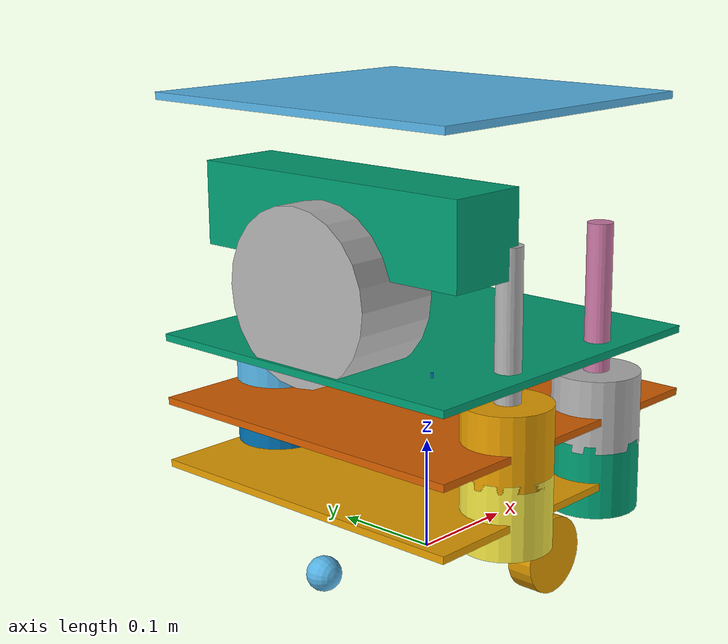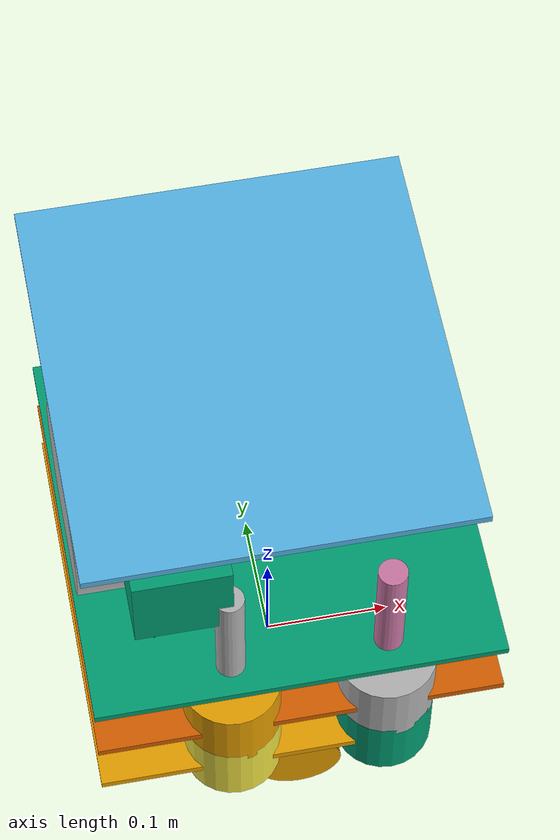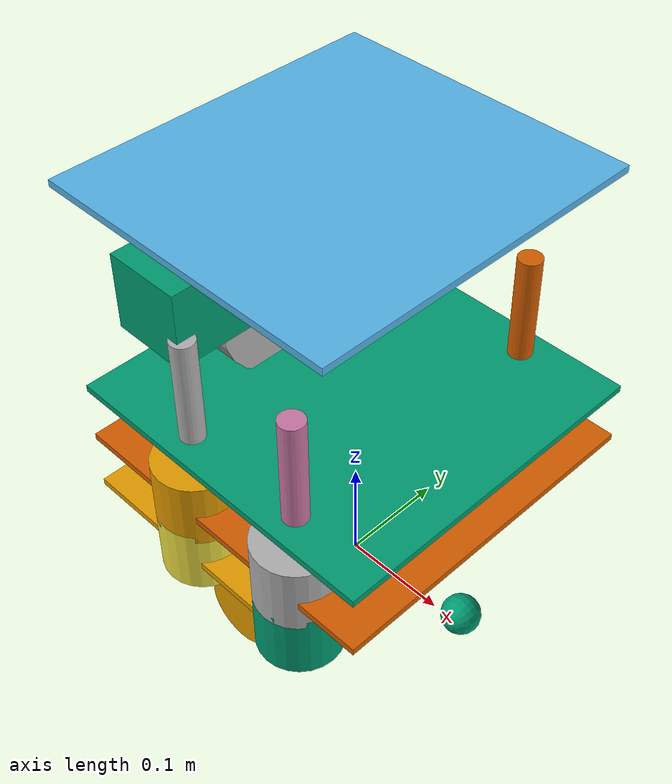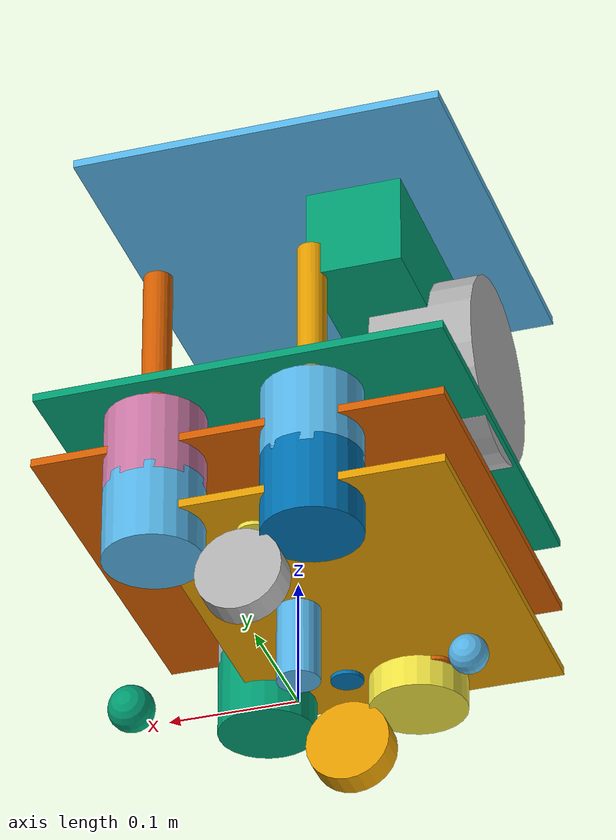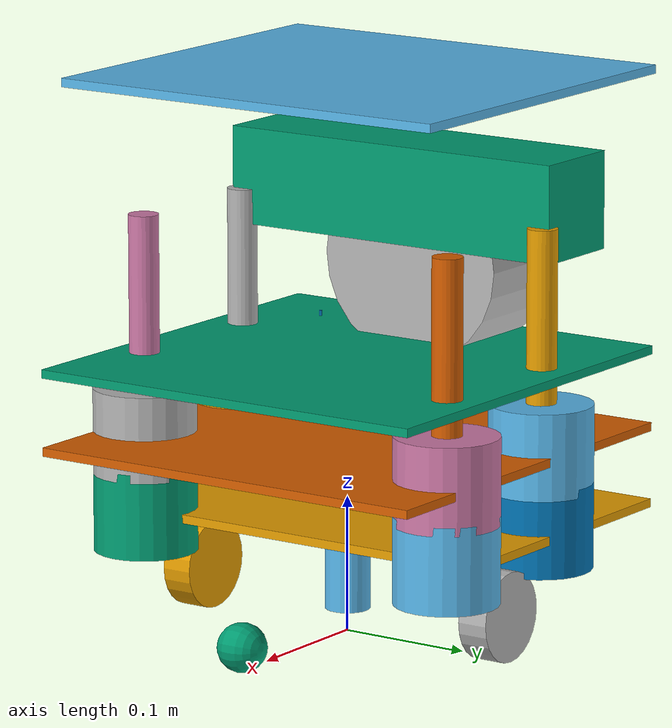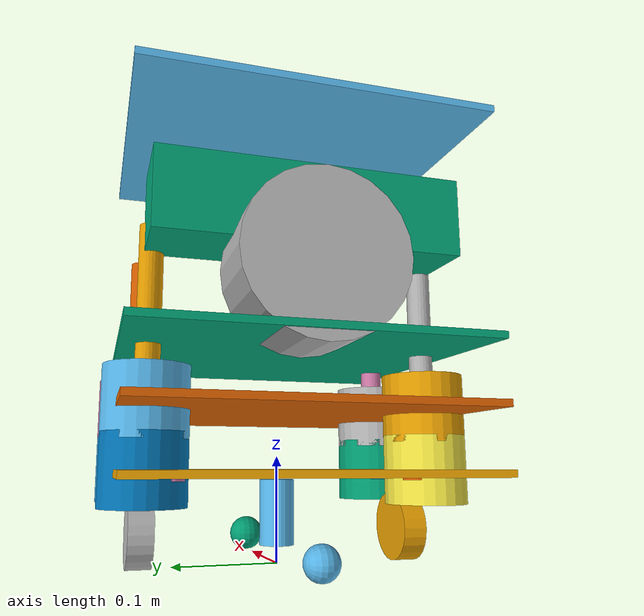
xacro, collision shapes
<?xml version="1.0"?>

<robot name="hector_turtlebot"
       xmlns:sensor="http://playerstage.sourceforge.net/gazebo/xmlschema/#sensor"
       xmlns:controller="http://playerstage.sourceforge.net/gazebo/xmlschema/#controller"
       xmlns:interface="http://playerstage.sourceforge.net/gazebo/xmlschema/#interface"
       xmlns:xacro="http://ros.org/wiki/xacro">
  <include filename="$(find turtlebot_description)/urdf/turtlebot_hardware.urdf.xacro" />
  <include filename="$(find hector_turtlebot_description)/urdf/hector_turtlebot_body.urdf.xacro" />
  <include filename="$(find turtlebot_description)/urdf/turtlebot_calibration.xacro" />
  <include filename="$(find hector_turtlebot_description)/urdf/hector_turtlebot_kinect.urdf.xacro" />

  <property name="M_PI" value="3.14159"/>
  <property name="SCALE" value="0.0254"/>

  <!-- Body of TurtleBot, with plates, standoffs and Create (including sim sensors) -->
  <hector_turtlebot_body/>

  <!-- Kinect frames and mounting (includes simulation) -->
  <hector_turtlebot_kinect/>

  <include filename="$(find hector_sensors_description)/urdf/hokuyo_utm30lx.urdf.xacro" />
  <xacro:hokuyo_utm30lx name="hokuyo_laser" parent="plate_2_link" ros_topic="hokuyo_scan" update_rate="40" ray_count="1040" min_angle="130" max_angle="-130">
    <origin xyz="-0.115 0.0 0.06" rpy="0 0 0"/>
  </xacro:hokuyo_utm30lx>
</robot>

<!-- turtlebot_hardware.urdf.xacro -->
<robot name="turtlebot_hardware" xmlns:xacro="http://ros.org/wiki/xacro">
  <property name="M_PI" value="3.14159"/>
  <property name="M_SCALE" value="0.001"/>

  <xacro:macro name="turtlebot_spacer" params="parent number x_loc y_loc z_loc">
    <joint name="spacer_${number}_joint" type="fixed">
      <origin xyz="${x_loc} ${y_loc} ${z_loc}" rpy="0 0 0" />
      <parent link="${parent}"/>
      <child link="spacer_${number}_link" />
    </joint>

    <link name="spacer_${number}_link">
      <inertial>
        <mass value="0.001" />
        <origin xyz="0 0 0" />
        <inertia ixx="0.0001" ixy="0.0" ixz="0.0"
          iyy="0.0001" iyz="0.0"
          izz="0.0001" />
      </inertial>

      <visual>
        <origin xyz=" 0 0 0 " rpy="0 0 0" />
        <geometry>
          <mesh filename="package://turtlebot_description/meshes/68-02403-125_Spacer.dae" scale="${M_SCALE} ${M_SCALE} ${M_SCALE}"/>
        </geometry>
      </visual>

      <collision>
        <origin xyz="0.0 0.0 0.0" rpy="0 0 0" />
        <geometry>
          <cylinder length="0.003175" radius=".0127"/>
        </geometry>
      </collision>
    </link>
  </xacro:macro>

  <xacro:macro name="turtlebot_standoff_1in" params="parent number x_loc y_loc z_loc">
    <joint name="standoff_1in_${number}_joint" type="fixed">
      <origin xyz="${x_loc} ${y_loc} ${z_loc}" rpy="0 0 0" />
      <parent link="${parent}"/>
      <child link="standoff_1in_${number}_link" />
    </joint>

    <link name="standoff_1in_${number}_link">
      <inertial>
        <mass value="0.001" />
        <origin xyz="0 0 0" />
        <inertia ixx="0.0001" ixy="0.0" ixz="0.0"
          iyy="0.0001" iyz="0.0"
          izz="0.0001" />
      </inertial>

      <visual>
        <origin xyz=" 0 0 0 " rpy="0 0 0" />
        <geometry>
          <mesh filename="package://turtlebot_description/meshes/68-04552-1000-RA_Turtlebot_M-F_Standoff.dae" scale="${M_SCALE} ${M_SCALE} ${M_SCALE}"/>
        </geometry>
      </visual>

      <collision>
        <origin xyz="0.0 0.0 0.0" rpy="0 0 0" />
        <geometry>
          <cylinder length="0.0381" radius="0.011113"/>
        </geometry>
      </collision>
    </link>
  </xacro:macro>

  <xacro:macro name="turtlebot_standoff_2in" params="parent number x_loc y_loc z_loc">
    <joint name="standoff_2in_${number}_joint" type="fixed">
      <origin xyz="${x_loc} ${y_loc} ${z_loc}" rpy="0 0 0" />
      <parent link="${parent}"/>
      <child link="standoff_2in_${number}_link" />
    </joint>

    <link name="standoff_2in_${number}_link">
      <inertial>
        <mass value="0.001" />
        <origin xyz="0 0 0" />
        <inertia ixx="0.0001" ixy="0.0" ixz="0.0"
          iyy="0.0001" iyz="0.0"
          izz="0.0001" />
      </inertial>

      <visual>
        <origin xyz=" 0 0 0 " rpy="0 0 0" />
        <geometry>
          <mesh filename="package://turtlebot_description/meshes/68-04552-2000-RA_Turtlebot_M-F_Standoff.dae" scale="${M_SCALE} ${M_SCALE} ${M_SCALE}"/>
        </geometry>
      </visual>

      <collision>
        <origin xyz="0.0 0.0 0.0" rpy="0 0 0" />
        <geometry>
          <cylinder length="0.0635" radius="0.0381"/>
        </geometry>
      </collision>
    </link>
  </xacro:macro>

  <xacro:macro name="turtlebot_standoff_8in" params="parent number x_loc y_loc z_loc">
    <joint name="standoff_8in_${number}_joint" type="fixed">
      <origin xyz="${x_loc} ${y_loc} ${z_loc}" rpy="0 0 0" />
      <parent link="${parent}"/>
      <child link="standoff_8in_${number}_link" />
    </joint>

    <link name="standoff_8in_${number}_link">
      <inertial>
        <mass value="0.001" />
        <origin xyz="0 0 0" />
        <inertia ixx="0.0001" ixy="0.0" ixz="0.0"
          iyy="0.0001" iyz="0.0"
          izz="0.0001" />
      </inertial>

      <visual>
        <origin xyz=" 0 0 0 " rpy="0 0 0" />
        <geometry>
          <mesh filename="package://turtlebot_description/meshes/68-02421-8000-RA_Turtlebot_F-F_Standoff.dae" scale="${M_SCALE} ${M_SCALE} ${M_SCALE}"/>
        </geometry>
      </visual>

      <collision>
        <origin xyz="0.0 0.0 0.0" rpy="0 0 0" />
        <geometry>
          <cylinder length="0.2032" radius="0.011113"/>
        </geometry>
      </collision>
    </link>
  </xacro:macro>

  <xacro:macro name="turtlebot_standoff_kinect" params="parent number x_loc y_loc z_loc">
    <joint name="standoff_kinect_${number}_joint" type="fixed">
      <origin xyz="${x_loc} ${y_loc} ${z_loc}" rpy="0 0 0" />
      <parent link="${parent}"/>
      <child link="standoff_kinect_${number}_link" />
    </joint>

    <link name="standoff_kinect_${number}_link">
      <inertial>
        <mass value="0.001" />
        <origin xyz="0 0 0" />
        <inertia ixx="0.0001" ixy="0.0" ixz="0.0"
          iyy="0.0001" iyz="0.0"
          izz="0.0001" />
      </inertial>

      <visual>
        <origin xyz=" 0 0 0 " rpy="0 0 0" />
        <geometry>
          <mesh filename="package://turtlebot_description/meshes/68-04556-RA_Kinect_Standoff_Assy.3ds" scale="${M_SCALE} ${M_SCALE} ${M_SCALE}"/>
        </geometry>
      </visual>

      <collision>
        <origin xyz="0.0 0.0 0.0" rpy="0 0 0" />
        <geometry>
          <cylinder length="0.008585" radius="0.001111"/>
        </geometry>
      </collision>
    </link>
  </xacro:macro>

</robot>

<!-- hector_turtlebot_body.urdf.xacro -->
<robot name="hector_turtlebot_hardware" xmlns:xacro="http://ros.org/wiki/xacro">
  <property name="M_PI" value="3.14159"/>

  <!-- Macro for TurtleBot body. Including Gazebo extensions, but does not include Kinect -->
  <include filename="$(find turtlebot_description)/urdf/gazebo.urdf.xacro"/>

  <property name="base_x" value="0.33" />
  <property name="base_y" value="0.33" />

  <xacro:macro name="hector_turtlebot_body">
    <material name="Green">
      <color rgba="0.0 0.8 0.0 1.0"/>
    </material>

  <!-- base_footprint is a fictitious link(frame) that is on the ground right below base_link origin, navigation stack depends on this frame -->

  <link name="base_footprint">
    <inertial>
      <mass value="0.0001" />
      <origin xyz="0 0 0" />
      <inertia ixx="0.0001" ixy="0.0" ixz="0.0"
              iyy="0.0001" iyz="0.0"
              izz="0.0001" />
    </inertial>

    <visual>
      <origin xyz="0 0 0" rpy="0 0 0" />
      <geometry>
        <box size="0.001 0.001 0.001" />
      </geometry>
      <material name="Green" />
    </visual>

    <collision>
      <origin xyz="0 0 0.017" rpy="0 0 0" />
      <geometry>
       <box size="0.001 0.001 0.001" />
      </geometry>
    </collision>
  </link>

  <link name="base_link">
    <inertial>
      <mass value="2" />
      <origin xyz="0 0 0.0" />
      <inertia ixx="0.01" ixy="0.0" ixz="0.0"
        iyy="0.01" iyz="0.0" izz="0.5" />
    </inertial>

    <visual>
      <origin xyz=" 0 0 0.0308" rpy="0 0 0" />
      <geometry>
        <mesh filename="package://turtlebot_description/meshes/create_body.dae"/>
      </geometry>
    </visual>

    <collision>
      <origin xyz="0.0 0.0 0.0308" rpy="0 0 0" />
      <geometry>
        <cylinder length="0.0611632" radius="0.016495"/>
      </geometry>
    </collision>
  </link>

  <link name="wall_sensor_link">
    <inertial>
      <mass value="0.01" />
      <origin xyz="0 0 0"/>
      <inertia ixx="0.001" ixy="0.0" ixz="0.0"
        iyy="0.001" iyz="0.0" izz="0.001" />
    </inertial>
  </link>

  <link name="left_cliff_sensor_link">
    <inertial>
      <mass value="0.01" />
      <origin xyz="0 0 0"/>
      <inertia ixx="0.001" ixy="0.0" ixz="0.0"
        iyy="0.001" iyz="0.0" izz="0.001" />
    </inertial>
  </link>

  <link name="right_cliff_sensor_link">
    <inertial>
      <mass value="0.01" />
      <origin xyz="0 0 0"/>
      <inertia ixx="0.001" ixy="0.0" ixz="0.0"
        iyy="0.001" iyz="0.0" izz="0.001" />
    </inertial>
  </link>

  <link name="leftfront_cliff_sensor_link">
    <inertial>
      <mass value="0.01" />
      <origin xyz="0 0 0"/>
      <inertia ixx="1.0" ixy="0.0" ixz="0.0"
        iyy="0.01" iyz="0.0" izz="0.01" />
    </inertial>
  </link>

  <link name="rightfront_cliff_sensor_link">
    <inertial>
      <mass value="0.01" />
      <origin xyz="0 0 0"/>
      <inertia ixx="0.001" ixy="0.0" ixz="0.0"
        iyy="0.001" iyz="0.0" izz="0.001" />
    </inertial>
  </link>

  <joint name="base_footprint_joint" type="fixed">
    <origin xyz="0 0 0.017" rpy="0 0 0" />
    <parent link="base_footprint"/>
    <child link="base_link" />
  </joint>

  <joint name="base_wall_sensor_joint" type="fixed">
    <origin xyz="0.09 -0.120 0.042" rpy="0 0 -1.0" />
    <parent link="base_link"/>
    <child link="wall_sensor_link" />
  </joint>

  <joint name="base_left_cliff_sensor_joint" type="fixed">
    <origin xyz="0.07 0.14 0.01" rpy="0 1.57079 0" />
    <parent link="base_link"/>
    <child link="left_cliff_sensor_link" />
  </joint>

  <joint name="base_right_cliff_sensor_joint" type="fixed">
    <origin xyz="0.07 -0.14 0.01" rpy="0 1.57079 0" />
    <parent link="base_link"/>
    <child link="right_cliff_sensor_link" />
  </joint>

  <joint name="base_leftfront_cliff_sensor_joint" type="fixed">
    <origin xyz="0.15 0.04 0.01" rpy="0 1.57079 0" />
    <parent link="base_link"/>
    <child link="leftfront_cliff_sensor_link" />
  </joint>

  <joint name="base_rightfront_cliff_sensor_joint" type="fixed">
    <origin xyz="0.15 -0.04 0.01" rpy="0 1.57079 0" />
    <parent link="base_link"/>
    <child link="rightfront_cliff_sensor_link" />
  </joint>

  <link name="left_wheel_link">
    <inertial>
      <origin xyz="0 0 0"/>
      <mass value="0.01" />
      <inertia ixx="0.001" ixy="0.0" ixz="0.0"
        iyy="0.001" iyz="0.0" izz="0.001" />
    </inertial>

    <visual>
      <origin xyz="0 0 0" rpy="0 1.5707 1.5707" />
      <geometry>
        <cylinder radius="0.033" length = "0.023"/>
      </geometry>
    </visual>

    <collision>
      <origin xyz="0 0 0" rpy="0 1.5707 1.5707" />
      <geometry>
        <cylinder radius="0.033" length = "0.023"/>
      </geometry>
    </collision>
  </link>

  <joint name="left_wheel_joint" type="continuous">
    <origin xyz="0 0.13 0.015" rpy="0 0 0"/>
    <parent link="base_link"/>
    <child link="left_wheel_link"/>
    <axis xyz="0 1 0"/>
  </joint>

  <link name="right_wheel_link">
    <inertial>
      <origin xyz="0 0 0"/>
      <mass value="0.01" />
      <inertia ixx="0.001" ixy="0.0" ixz="0.0"
        iyy="0.001" iyz="0.0" izz="0.001" />
    </inertial>

    <visual>
      <origin xyz="0 0 0" rpy="0 1.5707 1.5707" />
      <geometry>
        <cylinder radius="0.033" length = "0.023"/>
      </geometry>
    </visual>

    <collision>
      <origin xyz="0 0 0" rpy="0 1.5707 1.5707" />
      <geometry>
        <cylinder radius="0.033" length = "0.023"/>
      </geometry>
    </collision>
  </link>

  <joint name="right_wheel_joint" type="continuous">
    <origin xyz="0 -0.13 0.015" rpy="0 0 0"/>
    <parent link="base_link"/>
    <child link="right_wheel_link"/>
    <axis xyz="0 1 0"/>
  </joint>

  <link name="rear_wheel_link">
    <inertial>
      <origin xyz="0 0 0"/>
      <mass value="0.001" />
      <inertia ixx="0.0001" ixy="0.0" ixz="0.0"
        iyy="0.0001" iyz="0.0" izz="0.0001" />
    </inertial>

    <visual>
      <origin xyz="0 0 0" rpy="0 1.5707 1.5707"/>
      <geometry>
        <sphere radius="0.015" />
      </geometry>
    </visual>

    <collision>
      <origin xyz="0 0 0" rpy="0 1.5707 1.5707" />
      <geometry>
        <sphere radius="0.015" />
      </geometry>
    </collision>
  </link>
  <!-- fixed because there's no transmission -->
  <joint name="rear_castor_joint" type="fixed">
    <origin xyz="-0.13 0 0.0" rpy="0 0 0"/>
    <parent link="base_link"/>
    <child link="rear_wheel_link"/>
    <axis xyz="0 1 0"/>
  </joint>

  <link name="front_wheel_link">
    <inertial>
      <origin xyz="0 0 0" />
      <mass value="0.01" />
      <inertia ixx="0.001" ixy="0.0" ixz="0.0"
        iyy="0.001" iyz="0.0" izz="0.001" />
    </inertial>

    <visual>
      <origin xyz="0 0 0" rpy="0 1.5707 1.5707"/>
      <geometry>
        <sphere radius="0.018" />
      </geometry>
    </visual>

    <collision>
      <origin xyz="0 0 0" rpy="0 1.5707 1.5707" />
      <geometry>
        <sphere radius="0.018" />
      </geometry>
    </collision>
  </link>

  <!-- fixed because there's no transmission -->
  <joint name="front_castor_joint" type="fixed">
    <origin xyz="0.13 0 0.0" rpy="0 0 0"/>
    <parent link="base_link"/>
    <child link="front_wheel_link"/>
    <axis xyz="0 1 0"/>
  </joint>

  <turtlebot_spacer parent="base_link" number="0" x_loc="-0.00254" y_loc="0.1114679" z_loc="0.062992"/>
  <turtlebot_spacer parent="base_link" number="1" x_loc="-0.00254" y_loc="-0.1114679" z_loc="0.062992"/>
  <turtlebot_spacer parent="base_link" number="2" x_loc="-0.07239" y_loc="-0.1114679" z_loc="0.062992"/>
  <turtlebot_spacer parent="base_link" number="3" x_loc="-0.07239" y_loc="0.1114679" z_loc="0.062992"/>

  <joint name="gyro_joint" type="fixed">
    <axis xyz="0 1 0" />
    <origin xyz="0 0 0.04" rpy="0 0 0" />
    <parent link="base_link"/>
    <child link="gyro_link"/>
  </joint>
  <link name="gyro_link">
    <inertial>
      <mass value="0.001" />
      <origin xyz="0 0 0" rpy="0 0 0" />
      <inertia ixx="0.0001" ixy="0" ixz="0" iyy="0.000001" iyz="0" izz="0.0001" />
    </inertial>
  </link>

  <joint name="plate_0_joint" type="fixed">
    <origin xyz="-0.04334 0  0.06775704" rpy="0 0 0" />
    <parent link="base_link"/>
    <child link="plate_0_link" />
  </joint>

  <link name="plate_0_link">
    <inertial>
      <mass value="0.01" />
      <origin xyz="0 0 0" />
      <inertia ixx="0.01" ixy="0.0" ixz="0.0"
        iyy="0.01" iyz="0.0"
        izz="0.01" />
    </inertial>

    <visual>
      <origin xyz=" 0 0 0 " rpy="0 0 0" />
      <geometry>
        <mesh filename="package://turtlebot_description/meshes/plate_0_logo.dae"/>
      </geometry>
    </visual>

    <collision>
      <origin xyz="0.0 0.0 0.0" rpy="0 0 0" />
      <geometry>
        <box size="0.233502 0.314845 0.006401"/>
      </geometry>
    </collision>
  </link>

  <turtlebot_standoff_2in parent="base_link" number="0" x_loc="0.0676402" y_loc="0.1314196" z_loc="0.0709803"/>
  <turtlebot_standoff_2in parent="base_link" number="1" x_loc="0.0676402" y_loc="-0.1314196" z_loc="0.0709803"/>
  <turtlebot_standoff_2in parent="base_link" number="2" x_loc="-0.052832" y_loc="-0.1314196" z_loc="0.0709803"/>
  <turtlebot_standoff_2in parent="base_link" number="3" x_loc="-0.052832" y_loc="0.1314196" z_loc="0.0709803"/>

  <joint name="plate_1_joint" type="fixed">
    <origin xyz="0.04068 0 0.05715" rpy="0 0 0" />
    <parent link="plate_0_link"/>
    <child link="plate_1_link" />
  </joint>

  <link name="plate_1_link">
    <inertial>
      <mass value="0.1" />
      <origin xyz="0 0 0" />
      <inertia ixx="0.01" ixy="0.0" ixz="0.0"
        iyy="0.01" iyz="0.0"
        izz="0.01" />
    </inertial>

    <visual>
      <origin xyz=" 0 0 0 " rpy="0 0 0" />
      <geometry>
        <mesh filename="package://turtlebot_description/meshes/plate_1_logo.dae"/>
      </geometry>
    </visual>

    <collision>
      <origin xyz="0.0 0.0 0.0" rpy="0 0 0" />
      <geometry>
        <box size="0.314856 0.314856 0.006401"/>
      </geometry>
    </collision>
  </link>

  <turtlebot_standoff_2in parent="standoff_2in_0_link" number="4" x_loc="0" y_loc="0" z_loc="0.05715"/>
  <turtlebot_standoff_2in parent="standoff_2in_1_link" number="5" x_loc="0" y_loc="0" z_loc="0.05715"/>
  <turtlebot_standoff_2in parent="standoff_2in_2_link" number="6" x_loc="0" y_loc="0" z_loc="0.05715"/>
  <turtlebot_standoff_2in parent="standoff_2in_3_link" number="7" x_loc="0" y_loc="0" z_loc="0.05715"/>

  <joint name="plate_2_joint" type="fixed">
    <origin xyz="0 0 0.0572008" rpy="0 0 0" />
    <parent link="plate_1_link"/>
    <child link="plate_2_link" />
  </joint>

  <link name="plate_2_link">
    <inertial>
      <mass value="0.01" />
      <origin xyz="0 0 0" />
      <inertia ixx="0.001" ixy="0.0" ixz="0.0"
        iyy="0.001" iyz="0.0"
        izz="0.001" />
    </inertial>

    <visual>
      <origin xyz=" 0 0 0 " rpy="0 0 0" />
      <geometry>
        <mesh filename="package://turtlebot_description/meshes/plate_1_logo.dae"/>
      </geometry>
    </visual>

    <collision>
      <origin xyz="0.0 0.0 0.0" rpy="0 0 0" />
      <geometry>
        <box size="0.314856 0.314856 0.006401"/>
      </geometry>
    </collision>
  </link>

  <turtlebot_standoff_kinect parent="plate_2_link" number="0" x_loc="-0.1024382" y_loc="0.098" z_loc="0.0032004"/>
  <turtlebot_standoff_kinect parent="plate_2_link" number="1" x_loc="-0.1024382" y_loc="-0.098" z_loc="0.0032004"/>

  <turtlebot_standoff_8in parent="standoff_2in_4_link" number="0" x_loc="0" y_loc="0" z_loc="0.05715"/>
  <turtlebot_standoff_8in parent="standoff_2in_5_link" number="1" x_loc="0" y_loc="0" z_loc="0.05715"/>
  <turtlebot_standoff_8in parent="standoff_2in_6_link" number="2" x_loc="0" y_loc="0" z_loc="0.05715"/>
  <turtlebot_standoff_8in parent="standoff_2in_7_link" number="3" x_loc="0" y_loc="0" z_loc="0.05715"/>

  <joint name="plate_3_joint" type="fixed">
    <origin xyz="-0.01316 0 0.2063496" rpy="0 0 0" />
    <parent link="plate_2_link"/>
    <child link="plate_3_link" />
  </joint>

  <link name="plate_3_link">
    <inertial>
      <mass value="0.01" />
      <origin xyz="0 0 0" />
      <inertia ixx="0.0001" ixy="0.0" ixz="0.0"
        iyy="0.0001" iyz="0.0"
        izz="0.0001" />
    </inertial>

    <visual>
      <origin xyz=" 0 0 0 " rpy="0 0 0" />
      <geometry>
        <mesh filename="package://turtlebot_description/meshes/plate_2_logo.dae"/>
      </geometry>
    </visual>

    <collision>
      <origin xyz="0.0 0.0 0.0" rpy="0 0 0" />
      <geometry>
        <box size="0.288 0.315 0.006401"/>
      </geometry>
    </collision>
  </link>

  <!-- Simulation sensors -->
  <turtlebot_sim_imu/>
  <turtlebot_sim_create/>
  <turtlebot_sim_wall_sensors/>
  </xacro:macro>

</robot>

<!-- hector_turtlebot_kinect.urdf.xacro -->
<robot name="turtlebot_hardware" xmlns:xacro="http://ros.org/wiki/xacro">
  <property name="M_PI" value="3.14159"/>

  <include filename="$(find turtlebot_description)/urdf/gazebo.urdf.xacro"/>
  <include filename="$(find hector_turtlebot_description)/urdf/hector_turtlebot_calibration.xacro" />

<xacro:macro name="hector_turtlebot_kinect">
  <joint name="base_camera_joint" type="fixed">
    <origin xyz="${turtlebot_calib_cam_x} ${turtlebot_calib_cam_y} ${turtlebot_calib_cam_z}"
            rpy="${turtlebot_calib_cam_rr} ${turtlebot_calib_cam_rp} ${turtlebot_calib_cam_ry}" />
    <parent link="${turtlebot_camera_parent_name}" />
    <child link="camera_link" />
  </joint>

  <link name="camera_link">
    <inertial>
      <mass value="0.01" />
      <origin xyz="0 0 0" />
      <inertia ixx="0.001" ixy="0.0" ixz="0.0"
        iyy="0.001" iyz="0.0"
        izz="0.001" />
    </inertial>

    <visual>
      <origin xyz=" 0 0 0 " rpy="0 0 0" />
      <geometry>
        <mesh filename="package://hector_sensors_description/meshes/kinect_camera/kinect_camera_simple.dae"/>
      </geometry>
    </visual>

    <collision>
      <origin xyz="0.0 0.0 0.0" rpy="0 0 0" />
      <geometry>
        <box size="0.0730 .2760 0.0720"/>
      </geometry>
    </collision>

  </link>

  <joint name="camera_depth_joint" type="fixed">
    <origin xyz="0 0.018 0" rpy="0 0 0" />
    <parent link="camera_link" />
    <child link="camera_depth_frame" />
  </joint>

  <link name="camera_depth_frame">
    <inertial>
      <mass value="0.01" />
      <origin xyz="0 0 0" />
      <inertia ixx="0.001" ixy="0.0" ixz="0.0"
        iyy="0.001" iyz="0.0"
        izz="0.001" />
    </inertial>
  </link>

  <joint name="camera_depth_optical_joint" type="fixed">
    <origin xyz="0 0 0" rpy="${-M_PI/2} 0 ${-M_PI/2}" />
    <parent link="camera_depth_frame" />
    <child link="camera_depth_optical_frame" />
  </joint>

  <link name="camera_depth_optical_frame">
    <inertial>
      <mass value="0.001" />
      <origin xyz="0 0 0" />
      <inertia ixx="0.0001" ixy="0.0" ixz="0.0"
        iyy="0.0001" iyz="0.0"
        izz="0.0001" />
    </inertial>
  </link>

  <joint name="camera_rgb_joint" type="fixed">
    <origin xyz="0 -0.005 0" rpy="0 0 0" />
    <parent link="camera_link" />
    <child link="camera_rgb_frame" />
  </joint>

  <link name="camera_rgb_frame">
    <inertial>
      <mass value="0.001" />
      <origin xyz="0 0 0" />
      <inertia ixx="0.0001" ixy="0.0" ixz="0.0"
        iyy="0.0001" iyz="0.0"
        izz="0.0001" />
    </inertial>
  </link>

  <joint name="camera_rgb_optical_joint" type="fixed">
    <origin xyz="0 0 0" rpy="${-M_PI/2} 0 ${-M_PI/2}" />
    <parent link="camera_rgb_frame" />
    <child link="camera_rgb_optical_frame" />
  </joint>

  <link name="camera_rgb_optical_frame">
    <inertial>
      <mass value="0.001" />
      <origin xyz="0 0 0" />
      <inertia ixx="0.0001" ixy="0.0" ixz="0.0"
        iyy="0.0001" iyz="0.0"
        izz="0.0001" />
    </inertial>
  </link>

  <!-- Kinect sensor for simulation -->
</xacro:macro>

</robot>

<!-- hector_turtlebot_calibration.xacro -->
<robot>

  <property name="turtlebot_calib_cam_x" value="-0.0844382" />
  <property name="turtlebot_calib_cam_y" value="0" />
  <property name="turtlebot_calib_cam_z" value="0.1147496" />
  <property name="turtlebot_calib_cam_rr" value="0" />
  <property name="turtlebot_calib_cam_rp" value="0" />
  <property name="turtlebot_calib_cam_ry" value="0" />
  <property name="turtlebot_camera_parent_name" value="plate_2_link" />

</robot>

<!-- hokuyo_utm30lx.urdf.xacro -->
<robot xmlns:xacro="http://ros.org/wiki/xacro">
    <xacro:property name="M_PI" value="3.1415926535897931" />

    <xacro:macro name="hokuyo_utm30lx_model" params="name parent *origin">
      <joint name="${name}_joint" type="fixed">
        <xacro:insert_block name="origin" />
        <parent link="${parent}"/>
        <child link="${name}_frame"/>
      </joint>

      <link name="${name}_frame">
        <inertial>
          <mass value="0.270" />
          <origin xyz="0 0 0" rpy="0 0 0" />
          <inertia ixx="2.632e-4" ixy="0" ixz="0" iyy="2.632e-4" iyz="0" izz="1.62e-4" />
        </inertial>
        <visual>
          <origin xyz="0 0 0" rpy="0 0 0" />
          <geometry>
          <mesh filename="package://hector_sensors_description/meshes/hokuyo_utm30lx/hokuyo_utm_30lx$(optenv TEST_SELF_FILTER).dae"/>
        </geometry>
        </visual>
        <collision>
          <origin xyz="0.00 0 0.0" rpy="0 ${0.5 * M_PI} 0" />
          <geometry>
	    <cylinder length="0.079" radius="0.0735"/>
        </geometry>
        </collision>
      </link>
    </xacro:macro>

    <xacro:macro name="hokuyo_utm30lx" params="name parent *origin ros_topic update_rate ray_count min_angle max_angle">
      <xacro:hokuyo_utm30lx_model name="${name}" parent="${parent}">
        <xacro:insert_block name="origin" />
      </xacro:hokuyo_utm30lx_model>

      <gazebo reference="${name}_frame">
        <sensor type="ray" name="${name}">
          <always_on>true</always_on>
          <update_rate>${update_rate}</update_rate>
          <pose>0 0 0 0 0 0</pose>
          <visualize>false</visualize>
          <ray>
            <scan>
              <horizontal>
                <samples>${ray_count}</samples>
                <resolution>1</resolution>
                <min_angle>${min_angle * M_PI/180}</min_angle>
                <max_angle>${max_angle * M_PI/180}</max_angle>
              </horizontal>
            </scan>
            <range>
              <min>0.2</min>
              <max>30.0</max>
              <resolution>0.01</resolution>
            </range>
            <noise>
              <type>gaussian</type>
              <mean>0.0</mean>
              <stddev>0.004</stddev>
            </noise>
          </ray>
          <plugin name="gazebo_ros_${name}_controller" filename="libgazebo_ros_laser.so">
            <gaussianNoise>0.005</gaussianNoise>
            <hokuyoMinIntensity>2000</hokuyoMinIntensity>
            <alwaysOn>true</alwaysOn>
	    <robotNamespace>$(arg robot_name)/sensor/</robotNamespace>
            <updateRate>${update_rate}</updateRate>
            <topicName>${ros_topic}</topicName>
            <frameName>${name}_frame</frameName>
          </plugin>
        </sensor>
      </gazebo>
    </xacro:macro>

    <xacro:macro name="hokuyo_utm30lx_gpu" params="name parent *origin ros_topic update_rate ray_count min_angle max_angle">
      <xacro:hokuyo_utm30lx_model name="${name}" parent="${parent}">
        <xacro:insert_block name="origin" />
      </xacro:hokuyo_utm30lx_model>

      <gazebo reference="${name}_frame">
        <sensor type="gpu_ray" name="${name}">
          <update_rate>${update_rate}</update_rate>
          <pose>0 0 0 0 0 0</pose>
          <visualize>false</visualize>
          <ray>
            <scan>
              <horizontal>
                <samples>${ray_count}</samples>
                <resolution>1</resolution>
                <min_angle>${min_angle * M_PI/180}</min_angle>
                <max_angle>${max_angle * M_PI/180}</max_angle>
              </horizontal>
            </scan>
            <range>
              <min>0.2</min>
              <max>30.0</max>
              <resolution>0.01</resolution>
            </range>
            <noise>
              <type>gaussian</type>
              <mean>0.0</mean>
              <stddev>0.004</stddev>
            </noise>
          </ray>
          <plugin name="gazebo_ros_${name}_controller" filename="libgazebo_ros_gpu_laser.so">
            <topicName>${ros_topic}</topicName>
            <frameName>${name}_frame</frameName>
          </plugin>
        </sensor>
      </gazebo>
    </xacro:macro>
</robot>
